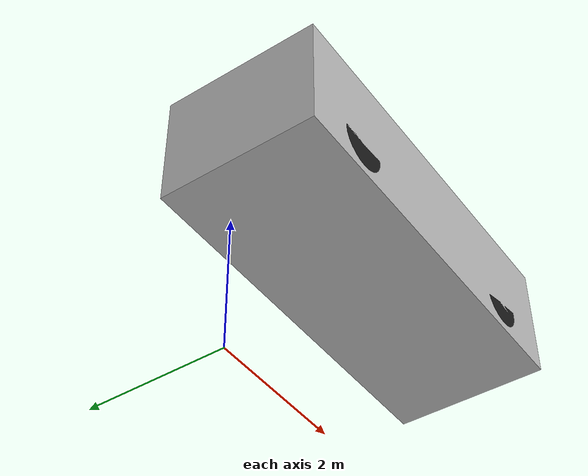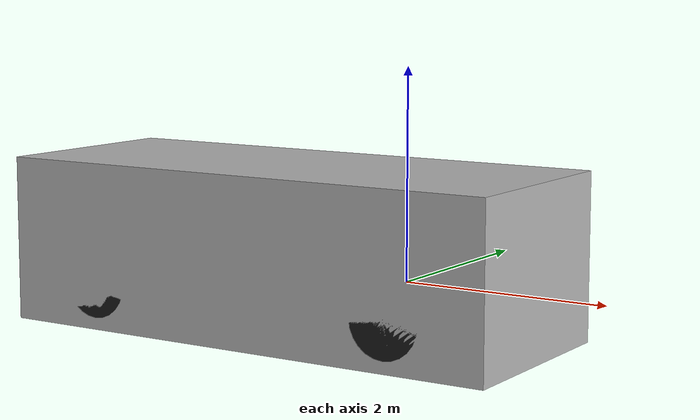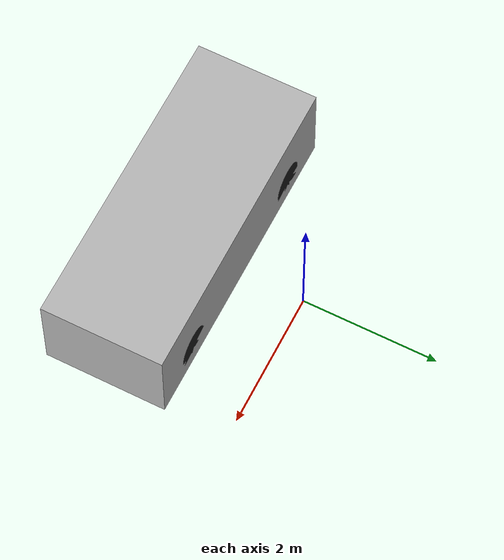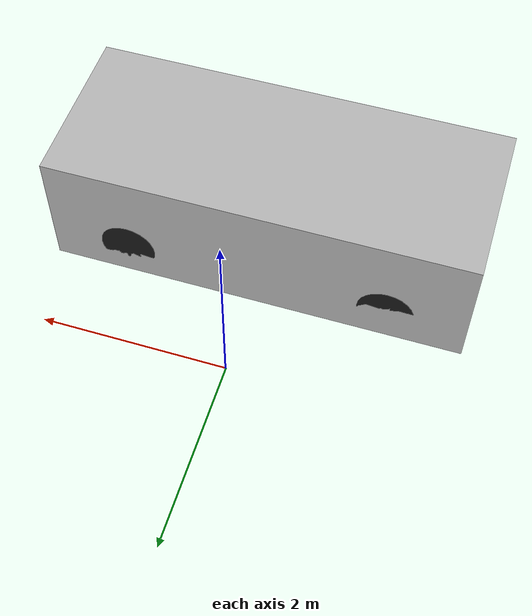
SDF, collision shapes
<?xml version="1.0" ?>
<sdf version="1.6">
  <model name="ego_vehicle">
    <static>false</static>
    <pose>0 -1.85 0 0 0 0</pose>

    <!-- Main body (chassis) -->
    <link name="chassis">
      <pose>0 0 0.4 0 0 0</pose>
      <inertial>
        <mass>1500.0</mass>
        <inertia>
          <ixx>500.0</ixx><ixy>0</ixy><ixz>0</ixz>
          <iyy>1500.0</iyy><iyz>0</iyz>
          <izz>1500.0</izz>
        </inertia>
      </inertial>

      <!-- Visual: use hatchback_blue mesh from gazebo_models -->
      <visual name="body_visual">
        <pose>0 0 0 0 0 0</pose>
        <geometry>
          <mesh>
            <uri>model://hatchback_blue/meshes/hatchback.obj</uri>
            <scale>1 1 1</scale>
          </mesh>
        </geometry>
      </visual>

      <!-- Collision: simplified box -->
      <collision name="body_collision">
        <pose>0 0 0.2 0 0 0</pose>
        <geometry>
          <box>
            <size>4.5 1.8 1.4</size>
          </box>
        </geometry>
      </collision>

      <!-- IMU sensor for ego acceleration -->
      <sensor name="imu" type="imu">
        <always_on>true</always_on>
        <update_rate>100</update_rate>
        <imu>
          <angular_velocity>
            <x><noise type="gaussian"><mean>0</mean><stddev>0.001</stddev></noise></x>
            <y><noise type="gaussian"><mean>0</mean><stddev>0.001</stddev></noise></y>
            <z><noise type="gaussian"><mean>0</mean><stddev>0.001</stddev></noise></z>
          </angular_velocity>
          <linear_acceleration>
            <x><noise type="gaussian"><mean>0</mean><stddev>0.01</stddev></noise></x>
            <y><noise type="gaussian"><mean>0</mean><stddev>0.01</stddev></noise></y>
            <z><noise type="gaussian"><mean>0</mean><stddev>0.01</stddev></noise></z>
          </linear_acceleration>
        </imu>
        <plugin name="imu_plugin" filename="libgazebo_ros_imu_sensor.so">
          <ros>
            <namespace>/aeb</namespace>
            <remapping>~/out:=imu</remapping>
          </ros>
          <frame_name>ego_imu</frame_name>
        </plugin>
      </sensor>
    </link>

    <!-- Four wheels -->
    <link name="front_left_wheel">
      <pose>1.4 0.8 0.3 -1.5708 0 0</pose>
      <inertial><mass>15.0</mass>
        <inertia><ixx>0.5</ixx><ixy>0</ixy><ixz>0</ixz><iyy>0.5</iyy><iyz>0</iyz><izz>0.9</izz></inertia>
      </inertial>
      <collision name="collision"><geometry><cylinder><radius>0.3</radius><length>0.2</length></cylinder></geometry>
        <surface><friction><ode><mu>0.9</mu><mu2>0.9</mu2></ode></friction></surface>
      </collision>
      <visual name="visual"><geometry><cylinder><radius>0.3</radius><length>0.2</length></cylinder></geometry>
        <material><ambient>0.1 0.1 0.1 1</ambient><diffuse>0.1 0.1 0.1 1</diffuse></material>
      </visual>
    </link>

    <link name="front_right_wheel">
      <pose>1.4 -0.8 0.3 -1.5708 0 0</pose>
      <inertial><mass>15.0</mass>
        <inertia><ixx>0.5</ixx><ixy>0</ixy><ixz>0</ixz><iyy>0.5</iyy><iyz>0</iyz><izz>0.9</izz></inertia>
      </inertial>
      <collision name="collision"><geometry><cylinder><radius>0.3</radius><length>0.2</length></cylinder></geometry>
        <surface><friction><ode><mu>0.9</mu><mu2>0.9</mu2></ode></friction></surface>
      </collision>
      <visual name="visual"><geometry><cylinder><radius>0.3</radius><length>0.2</length></cylinder></geometry>
        <material><ambient>0.1 0.1 0.1 1</ambient><diffuse>0.1 0.1 0.1 1</diffuse></material>
      </visual>
    </link>

    <link name="rear_left_wheel">
      <pose>-1.4 0.8 0.3 -1.5708 0 0</pose>
      <inertial><mass>15.0</mass>
        <inertia><ixx>0.5</ixx><ixy>0</ixy><ixz>0</ixz><iyy>0.5</iyy><iyz>0</iyz><izz>0.9</izz></inertia>
      </inertial>
      <collision name="collision"><geometry><cylinder><radius>0.3</radius><length>0.2</length></cylinder></geometry>
        <surface><friction><ode><mu>0.9</mu><mu2>0.9</mu2></ode></friction></surface>
      </collision>
      <visual name="visual"><geometry><cylinder><radius>0.3</radius><length>0.2</length></cylinder></geometry>
        <material><ambient>0.1 0.1 0.1 1</ambient><diffuse>0.1 0.1 0.1 1</diffuse></material>
      </visual>
    </link>

    <link name="rear_right_wheel">
      <pose>-1.4 -0.8 0.3 -1.5708 0 0</pose>
      <inertial><mass>15.0</mass>
        <inertia><ixx>0.5</ixx><ixy>0</ixy><ixz>0</ixz><iyy>0.5</iyy><iyz>0</iyz><izz>0.9</izz></inertia>
      </inertial>
      <collision name="collision"><geometry><cylinder><radius>0.3</radius><length>0.2</length></cylinder></geometry>
        <surface><friction><ode><mu>0.9</mu><mu2>0.9</mu2></ode></friction></surface>
      </collision>
      <visual name="visual"><geometry><cylinder><radius>0.3</radius><length>0.2</length></cylinder></geometry>
        <material><ambient>0.1 0.1 0.1 1</ambient><diffuse>0.1 0.1 0.1 1</diffuse></material>
      </visual>
    </link>

    <!-- Wheel joints -->
    <joint name="front_left_wheel_joint" type="revolute">
      <parent>chassis</parent><child>front_left_wheel</child>
      <axis><xyz>0 0 1</xyz></axis>
    </joint>
    <joint name="front_right_wheel_joint" type="revolute">
      <parent>chassis</parent><child>front_right_wheel</child>
      <axis><xyz>0 0 1</xyz></axis>
    </joint>
    <joint name="rear_left_wheel_joint" type="revolute">
      <parent>chassis</parent><child>rear_left_wheel</child>
      <axis><xyz>0 0 1</xyz></axis>
    </joint>
    <joint name="rear_right_wheel_joint" type="revolute">
      <parent>chassis</parent><child>rear_right_wheel</child>
      <axis><xyz>0 0 1</xyz></axis>
    </joint>

    <!-- Planar move plugin: allows setting velocity via ROS2 cmd_vel -->
    <plugin name="object_controller" filename="libgazebo_ros_planar_move.so">
      <ros>
        <namespace>/aeb/ego</namespace>
      </ros>
      <command_topic>cmd_vel</command_topic>
      <odometry_topic>odom</odometry_topic>
      <odometry_frame>odom</odometry_frame>
      <robot_base_frame>ego_vehicle</robot_base_frame>
      <odometry_rate>100.0</odometry_rate>
      <publish_odom>true</publish_odom>
      <publish_odom_tf>true</publish_odom_tf>
    </plugin>

  </model>
</sdf>
